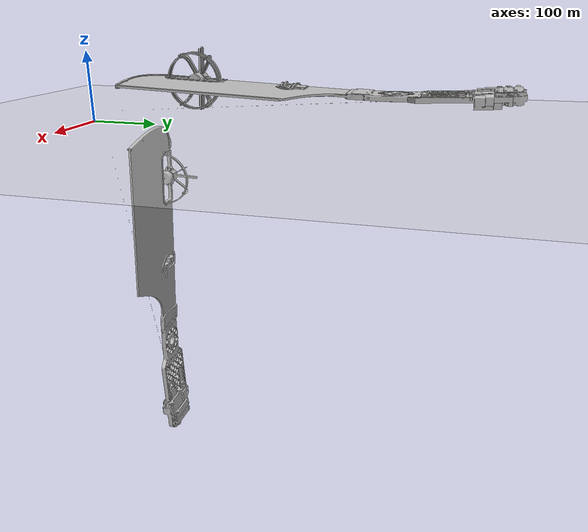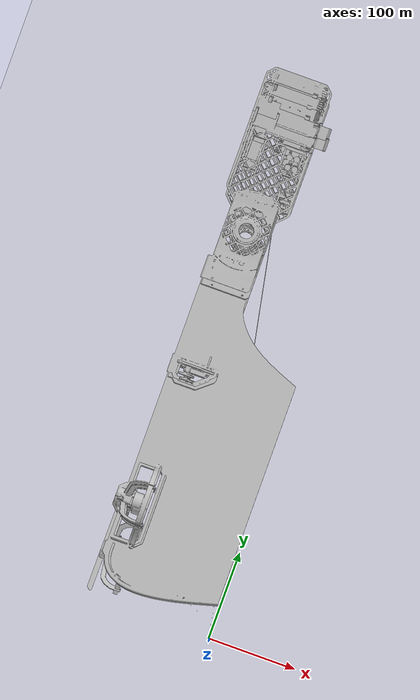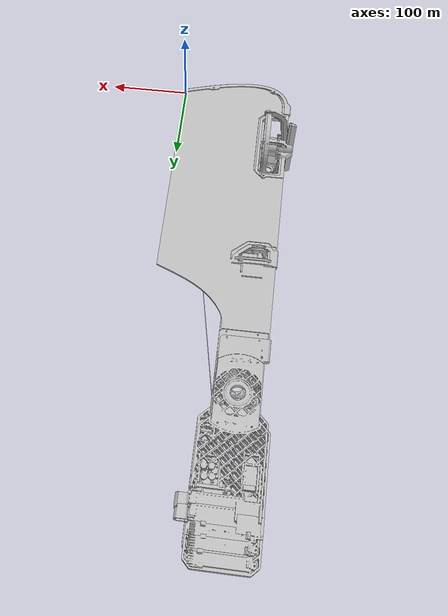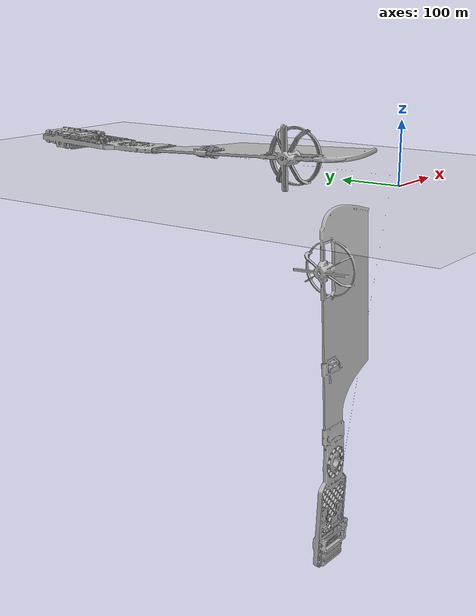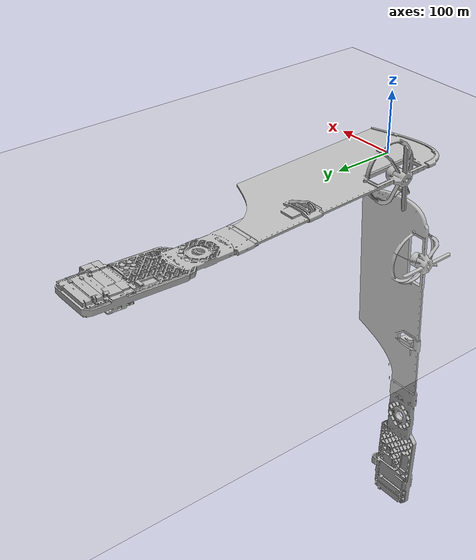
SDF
<?xml version="1.0" ?>
<sdf version="1.5">
  <world name="default">
    <!-- A global light source -->
    <include>
      <uri>model://sun</uri>
    </include>
    <!-- A ground plane -->
    <include>
      <uri>model://ground_plane</uri>
    </include>
    <include>
      <uri>model://delta_wing</uri>
    </include>
    <physics name='default_physics' default='0' type='ode'>
      <gravity>0 0 -9.8066</gravity>
      <ode>
        <solver>
          <type>quick</type>
          <iters>100</iters>
          <sor>1.0</sor>
          <use_dynamic_moi_rescaling>0</use_dynamic_moi_rescaling>
        </solver>
        <constraints>
          <cfm>0</cfm>
          <erp>0.2</erp>
          <contact_max_correcting_vel>100</contact_max_correcting_vel>
          <contact_surface_layer>0.001</contact_surface_layer>
        </constraints>
      </ode>
      <max_step_size>0.002</max_step_size>
      <real_time_factor>1</real_time_factor>
      <real_time_update_rate>500</real_time_update_rate>
      <magnetic_field>6.0e-6 2.3e-5 -4.2e-5</magnetic_field>
    </physics>
  </world>
</sdf>

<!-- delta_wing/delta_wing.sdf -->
<sdf version='1.6' xmlns:xacro='http://ros.org/wiki/xacro'>
  <xacro:arg name='visual_material' default='DarkGrey' />
  <xacro:arg name='mavlink_addr' default='INADDR_ANY' />
  <xacro:arg name='mavlink_udp_port' default='14560' />
  <model name="delta_wing">
    <pose>0 0 0 0 0 1.5707</pose>
    <include>
      <uri>model://zephyr_delta_wing</uri>
      <pose>0 0 0.2 0 0 0</pose>
    </include>

    <link name="skid_pad">
      <inertial>
        <mass>0.1</mass>
        <inertia>
          <ixx>0.0043137104</ixx>
          <ixy>0</ixy>
          <iyy>0.00387382402</iyy>
          <ixz>0</ixz>
          <iyz>0</iyz>
          <izz>0.00809845106</izz>
        </inertia>
      </inertial>
      <collision name="skid_pad">
        <pose>0 -0.07 0.025 0 0 0</pose>
        <geometry>
          <box>
            <size>1.0 0.5 .05</size>
          </box>
        </geometry>
        <surface>
          <contact>
            <ode>
              <kp>100000000</kp>
              <kd>1</kd>
              <min_depth>0.001</min_depth>
              <max_vel>1.0</max_vel>
            </ode>
          </contact>
          <friction>
            <ode>
              <mu>0.3</mu>
              <mu2>0</mu2>
              <fdir1>1 0 0</fdir1>
            </ode>
          </friction>
        </surface>
      </collision>
      <visual name="team_color">
        <pose>0 0 0.2 0 0 0</pose>
        <geometry>
          <mesh>
            <uri>model://zephyr_delta_wing/meshes/wing.dae</uri>
            <submesh>
              <name>Wing</name>
              <center>true</center>
            </submesh>
            <scale>1.02 1.02 1.02</scale>
          </mesh>
        </geometry>
        <material>
          <script>
            <name>Gazebo/$(arg visual_material)</name>
            <uri>file://media/materials/scripts/gazebo.material</uri>
          </script>
        </material>
      </visual>
      <sensor name="camera" type="camera">
        <pose>0 6 0.0 0 0.0 -1.5707</pose>
        <camera>
          <horizontal_fov>1.347</horizontal_fov>
          <image>
            <width>640</width>
            <height>480</height>
          </image>
          <clip>
            <near>0.1</near>
            <far>1000</far>
          </clip>
        </camera>
        <always_on>0</always_on>
        <update_rate>15</update_rate>
        <visualize>false</visualize>
      </sensor>
      <sensor name="camera_wide" type="camera">
        <pose>0 5 2.0 0 0.3 -1.5707</pose>
        <camera>
          <horizontal_fov>2.0</horizontal_fov>
          <image>
            <width>640</width>
            <height>480</height>
          </image>
          <clip>
            <near>0.1</near>
            <far>1000</far>
          </clip>
        </camera>
        <always_on>0</always_on>
        <update_rate>15</update_rate>
        <visualize>false</visualize>
      </sensor>
    </link>
    <joint name="skid_pad_joint" type="revolute">
      <parent>zephyr_delta_wing::wing</parent>
      <child>skid_pad</child>
      <axis>
        <limit>
          <lower>0</lower>
          <upper>0</upper>
        </limit>
        <xyz>1 0 0</xyz>
        <use_parent_model_frame>true</use_parent_model_frame>
      </axis>
    </joint>

    <link name='delta_wing/imu_link'>
      <pose>0 0 0.2 0 0 -1.5707</pose>
      <inertial>
        <pose>0 0 0 0 0 0</pose>
        <mass>0.15</mass>
        <inertia>
          <ixx>1e-04</ixx>
          <ixy>0</ixy>
          <ixz>0</ixz>
          <iyy>1e-04</iyy>
          <iyz>0</iyz>
          <izz>1e-04</izz>
        </inertia>
      </inertial>
    </link>
    <joint name='delta_wing/imu_joint' type='revolute'>
      <child>delta_wing/imu_link</child>
      <parent>zephyr_delta_wing::wing</parent>
      <axis>
        <xyz>0 0 1</xyz>
        <limit>
          <lower>0</lower>
          <upper>0</upper>
        </limit>
        <dynamics>
          <damping>0.1</damping>
        </dynamics>
        <use_parent_model_frame>1</use_parent_model_frame>
      </axis>
      <physics>
        <ode>
          <implicit_spring_damper>1</implicit_spring_damper>
        </ode>
      </physics>
    </joint>

    <include>
      <uri>model://gps</uri>
      <pose>0 0 0 0 0 0</pose>
      <name>gps</name>
    </include>
    <joint name='gps_joint' type='fixed'>
      <child>gps::link</child>
      <parent>base_link</parent>
    </joint>
    <plugin name='gazebo_imu_plugin' filename='libgazebo_imu_plugin.so'>
      <robotNamespace>delta_wing</robotNamespace>
      <linkName>delta_wing/imu_link</linkName>
      <imuTopic>/imu</imuTopic>
    </plugin>
    <plugin name='groundtruth_plugin' filename='libgazebo_groundtruth_plugin.so'>
      <robotNamespace/>
    </plugin>
    <plugin name='magnetometer_plugin' filename='libgazebo_magnetometer_plugin.so'>
      <robotNamespace/>
      <pubRate>100</pubRate>
      <noiseDensity>0.0004</noiseDensity>
      <randomWalk>6.4e-06</randomWalk>
      <biasCorrelationTime>600</biasCorrelationTime>
      <magTopic>/mag</magTopic>
    </plugin>
    <plugin name='barometer_plugin' filename='libgazebo_barometer_plugin.so'>
      <robotNamespace/>
      <pubRate>50</pubRate>
      <baroTopic>/baro</baroTopic>
    </plugin>
    <plugin name='mavlink_interface' filename='libgazebo_mavlink_interface.so'>
      <robotNamespace>delta_wing</robotNamespace>
      <imuSubTopic>/imu</imuSubTopic>
      <magSubTopic>/mag</magSubTopic>
      <baroSubTopic>/baro</baroSubTopic>
      <mavlink_addr>$(arg mavlink_addr)</mavlink_addr>
      <mavlink_udp_port>$(arg mavlink_udp_port)</mavlink_udp_port>
      <serialEnabled>false</serialEnabled>
      <serialDevice>/dev/ttyACM0</serialDevice>
      <baudRate>921600</baudRate>
      <qgc_addr>INADDR_ANY</qgc_addr>
      <qgc_udp_port>14550</qgc_udp_port>
      <hil_mode>false</hil_mode>
      <hil_state_level>false</hil_state_level>
      <motorSpeedCommandPubTopic>/gazebo/command/motor_speed</motorSpeedCommandPubTopic>
      <control_channels>
        <channel name="not_used_1">
          <input_index>0</input_index>
          <input_offset>0</input_offset>
          <input_scaling>0</input_scaling>
          <zero_position_disarmed>0</zero_position_disarmed>
          <zero_position_armed>0</zero_position_armed>
          <joint_control_type>velocity</joint_control_type>
        </channel>
        <channel name="not_used_2">
          <input_index>1</input_index>
          <input_offset>0</input_offset>
          <input_scaling>0</input_scaling>
          <zero_position_disarmed>0</zero_position_disarmed>
          <zero_position_armed>0</zero_position_armed>
          <joint_control_type>velocity</joint_control_type>
        </channel>
        <channel name="rudder">
          <input_index>2</input_index>
          <input_offset>0</input_offset>
          <input_scaling>0</input_scaling>
          <zero_position_disarmed>0</zero_position_disarmed>
          <zero_position_armed>0</zero_position_armed>
          <joint_control_type>position</joint_control_type>
        </channel>
        <channel name="flaps">
          <input_index>3</input_index>
          <input_offset>0</input_offset>
          <input_scaling>0</input_scaling>
          <zero_position_disarmed>0</zero_position_disarmed>
          <zero_position_armed>0</zero_position_armed>
          <joint_control_type>position</joint_control_type>
        </channel>
        <channel name="throttle">
          <input_index>4</input_index>
          <input_offset>1</input_offset>
          <input_scaling>324.6</input_scaling>
          <zero_position_disarmed>0</zero_position_disarmed>
          <zero_position_armed>0</zero_position_armed>
          <joint_control_type>velocity</joint_control_type>
          <joint_control_pid>
            <p>0.1</p>
            <i>0</i>
            <d>0</d>
            <iMax>0.0</iMax>
            <iMin>0.0</iMin>
            <cmdMax>2</cmdMax>
            <cmdMin>-2</cmdMin>
          </joint_control_pid>
          <joint_name>zephyr_delta_wing::propeller_joint</joint_name>
        </channel>
        <channel name="left_aileron">
          <input_index>5</input_index>
          <input_offset>0</input_offset>
          <!-- joint limits [-0.524, 0.524] -->
          <input_scaling>0.524</input_scaling>
          <zero_position_disarmed>0</zero_position_disarmed>
          <zero_position_armed>0</zero_position_armed>
          <joint_control_type>position</joint_control_type>
          <joint_name>zephyr_delta_wing::flap_left_joint</joint_name>
          <joint_control_pid>
            <p>10.0</p>
            <i>0</i>
            <d>0</d>
            <iMax>0</iMax>
            <iMin>0</iMin>
            <cmdMax>20</cmdMax>
            <cmdMin>-20</cmdMin>
          </joint_control_pid>
        </channel>
        <channel name="right_aileron">
          <input_index>6</input_index>
          <input_offset>0</input_offset>
          <!-- joint limits [-0.524, 0.524] -->
          <input_scaling>0.524</input_scaling>
          <zero_position_disarmed>0</zero_position_disarmed>
          <zero_position_armed>0</zero_position_armed>
          <joint_control_type>position</joint_control_type>
          <joint_name>zephyr_delta_wing::flap_right_joint</joint_name>
          <joint_control_pid>
            <p>10.0</p>
            <i>0</i>
            <d>0</d>
            <iMax>0</iMax>
            <iMin>0</iMin>
            <cmdMax>20</cmdMax>
            <cmdMin>-20</cmdMin>
          </joint_control_pid>
        </channel>
        <channel name="elevator">
          <input_index>7</input_index>
          <input_offset>0</input_offset>
          <input_scaling>0.524</input_scaling>
          <zero_position_disarmed>0</zero_position_disarmed>
          <zero_position_armed>0</zero_position_armed>
          <joint_control_type>position</joint_control_type>
        </channel>
      </control_channels>
    </plugin>
  </model>
</sdf>

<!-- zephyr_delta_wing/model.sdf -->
<sdf version="1.6">
  <model name="zephyr_delta_wing">
    <pose>0 0 0.02577 0 0 0</pose>

    <link name="wing">
      <inertial>
        <pose>0 -0.12 0 0 0 0</pose>
        <mass>1.5</mass>
        <inertia>
          <ixx>0.083137104</ixx>
          <ixy>0</ixy>
          <iyy>0.387382402</iyy>
          <ixz>0</ixz>
          <iyz>0</iyz>
          <izz>0.469845106</izz>
        </inertia>
      </inertial>
      <visual name="visual">
        <geometry>
          <mesh>
            <uri>model://../model_source/models/zephyr_delta_wing/meshes/wing.dae</uri>
            <submesh>
              <name>Wing</name>
              <center>true</center>
            </submesh>
          </mesh>
        </geometry>
      </visual>
      <collision name="body_collision">
        <geometry>
          <mesh>
            <uri>model://../model_source/models/zephyr_delta_wing/meshes/wing.dae</uri>
            <submesh>
              <name>Wing</name>
              <center>true</center>
            </submesh>
          </mesh>
        </geometry>
      </collision>
      <collision name="right_rudder_collision">
        <pose>-0.76435 0.33918 0.002 -0.03 0 0</pose>
        <geometry>
          <box>
            <size>.005 0.12993 .12688</size>
          </box>
        </geometry>
      </collision>
      <collision name="left_rudder_collision">
        <pose>0.76435 0.33918 0.002 -0.03 0 0</pose>
        <geometry>
          <box>
            <size>.005 0.12993 .12688</size>
          </box>
        </geometry>
      </collision>
      <sensor name="gps_sensor" type="gps">
        <pose>0 0 0  0 0 0</pose>
        <update_rate>10.0</update_rate>
        <always_on>true</always_on>
        <gps>
          <position_sensing>
            <horizontal>
              <noise type="gaussian_quantized">
                <mean>0</mean>
                <stddev>1</stddev>
                <bias_mean>3</bias_mean>
                <bias_stddev>1</bias_stddev>
                <precision>0.5</precision>
              </noise>
            </horizontal>
            <vertical>
              <noise type="gaussian_quantized">
                <mean>0</mean>
                <stddev>1</stddev>
                <bias_mean>3</bias_mean>
                <bias_stddev>1</bias_stddev>
                <precision>1.0</precision>
              </noise>
            </vertical>
          </position_sensing>
          <velocity_sensing>
            <horizontal>
              <noise type="gaussian_quantized">
                <mean>0</mean>
                <stddev>0.1</stddev>
                <bias_mean>0.1</bias_mean>
                <bias_stddev>0.1</bias_stddev>
                <precision>0.1</precision>
              </noise>
            </horizontal>
            <vertical>
              <noise type="gaussian_quantized">
                <mean>0</mean>
                <stddev>0.2</stddev>
                <bias_mean>0.2</bias_mean>
                <bias_stddev>0.2</bias_stddev>
                <precision>0.2</precision>
              </noise>
            </vertical>
          </velocity_sensing>
        </gps>
      </sensor>
    </link>

    <link name="propeller">
      <pose>0 0.07 0.008 0 1.5707 0</pose>
      <inertial>
        <mass>.05</mass>
        <inertia>
          <ixx>0.000367571</ixx>
          <ixy>0</ixy>
          <iyy>0.00036985</iyy>
          <ixz>0</ixz>
          <iyz>0</iyz>
          <izz>0.000003187</izz>
        </inertia>
      </inertial>
      <visual name="visual">
        <geometry>
          <mesh>
            <uri>model://../model_source/models/zephyr_delta_wing/meshes/wing.dae</uri>
            <submesh>
              <name>Propeller</name>
              <center>true</center>
            </submesh>
          </mesh>
        </geometry>
      </visual>
      <collision name="blade1">
        <pose>0 0 0.074205 0 0  0.3</pose>
        <geometry>
          <box>
            <size>0.02561 0.00541 0.14841</size>
          </box>
        </geometry>
      </collision>
      <collision name="blade2">
        <pose>0 0 -0.074205 0 0  -0.3</pose>
        <geometry>
          <box>
            <size>0.02561 0.00541 0.14841</size>
          </box>
        </geometry>
      </collision>
    </link>

    <link name="flap_left">
      <pose>0.4530 .239 0.007 0 0 0</pose>
      <inertial>
        <pose>0 0 0 0 0 0.32445671</pose>
        <mass>.1</mass>
        <inertia>
          <ixx>0.000102319</ixx>
          <ixy>0</ixy>
          <iyy>0.00334417</iyy>
          <ixz>0</ixz>
          <iyz>0</iyz>
          <izz>0.003446072</izz>
        </inertia>
      </inertial>
      <visual name="visual">
        <geometry>
          <mesh>
            <uri>model://../model_source/models/zephyr_delta_wing/meshes/wing.dae</uri>
            <submesh>
              <name>Flap_Left</name>
              <center>true</center>
            </submesh>
          </mesh>
        </geometry>
      </visual>
      <collision name="collision">
        <pose>-0.01 0.01 0 0 0 0.32445671</pose>
        <geometry>
          <box>
            <size>0.633463031 0.110694312 0.005</size>
          </box>
        </geometry>
      </collision>
    </link>

    <link name="flap_right">
      <pose>-0.4530 .239 0.007 0 0 0</pose>
      <inertial>
        <pose>0 0 0 0 0 -0.32445671</pose>
        <mass>.1</mass>
        <inertia>
          <ixx>0.000102319</ixx>
          <ixy>0</ixy>
          <iyy>0.00334417</iyy>
          <ixz>0</ixz>
          <iyz>0</iyz>
          <izz>0.003446072</izz>
        </inertia>
      </inertial>
      <visual name="visual">
        <geometry>
          <mesh>
            <uri>model://../model_source/models/zephyr_delta_wing/meshes/wing.dae</uri>
            <submesh>
              <name>Flap_Right</name>
              <center>true</center>
            </submesh>
          </mesh>
        </geometry>
      </visual>
      <collision name="collision">
        <pose>0.01 0.01 0 0 0 -0.32445671</pose>
        <geometry>
          <box>
            <size>0.633463031 0.110694312 0.005</size>
          </box>
        </geometry>
      </collision>
    </link>

    <joint name="propeller_joint" type="revolute">
      <parent>wing</parent>
      <child>propeller</child>
      <axis>
        <xyz>0 -1 0</xyz>
        <dynamics>
          <damping>0.002</damping>
        </dynamics>
      </axis>
      <physics>
        <ode>
          <implicit_spring_damper>1</implicit_spring_damper>
        </ode>
      </physics>
    </joint>

    <joint name="flap_left_joint" type="revolute">
      <parent>wing</parent>
      <child>flap_left</child>
      <pose>0 -0.04 0 0 0 0</pose>
      <axis>
        <xyz>1 0.330321014 0</xyz>
        <limit>
          <lower>-0.524</lower>
          <upper>0.524</upper>
        </limit>
        <dynamics>
          <damping>0.1</damping>
        </dynamics>
      </axis>
      <physics>
        <ode>
          <implicit_spring_damper>1</implicit_spring_damper>
        </ode>
      </physics>
    </joint>

    <joint name="flap_right_joint" type="revolute">
      <parent>wing</parent>
      <child>flap_right</child>
      <pose>0 -0.04 0 0 0 0</pose>
      <axis>
        <xyz>1 -0.330321014 0</xyz>
        <limit>
          <lower>-0.524</lower>
          <upper>0.524</upper>
        </limit>
        <dynamics>
          <damping>0.1</damping>
        </dynamics>
      </axis>
      <physics>
        <ode>
          <implicit_spring_damper>1</implicit_spring_damper>
        </ode>
      </physics>
    </joint>

    <plugin name="invisible_canard" filename="libLiftDragPlugin.so">
      <a0>0.13</a0>
      <cla>3.7</cla>
      <cda>0.06417112299</cda>
      <cma>-1.8</cma>
      <alpha_stall>0.3391428111</alpha_stall>
      <cla_stall>-3.85</cla_stall>
      <cda_stall>-0.9233984055</cda_stall>
      <cma_stall>0</cma_stall>
      <cp>0 -0.1 0</cp>
      <area>0.50</area>
      <air_density>1.2041</air_density>
      <forward>0 -1 0</forward>
      <upward>0 0 1</upward>
      <link_name>wing</link_name>
    </plugin>
    <plugin name="left_wing" filename="libLiftDragPlugin.so">
      <a0>0.15</a0>
      <cla>6.8</cla>
      <cda>0.06417112299</cda>
      <cma>-1.8</cma>
      <alpha_stall>0.6391428111</alpha_stall>
      <cla_stall>-3.85</cla_stall>
      <cda_stall>-0.9233984055</cda_stall>
      <cma_stall>0</cma_stall>
      <cp>0.7 0.20 0</cp>
      <area>0.10</area>
      <air_density>1.2041</air_density>
      <forward>0 -1 0</forward>
      <upward>0 0 1</upward>
      <link_name>wing</link_name>
      <control_joint_name>
        flap_left_joint
      </control_joint_name>
      <control_joint_rad_to_cl>-5.0</control_joint_rad_to_cl>
    </plugin>
    <plugin name="right_wing" filename="libLiftDragPlugin.so">
      <a0>0.15</a0>
      <cla>6.8</cla>
      <cda>0.06417112299</cda>
      <cma>-1.8</cma>
      <alpha_stall>0.6391428111</alpha_stall>
      <cla_stall>-3.85</cla_stall>
      <cda_stall>-0.9233984055</cda_stall>
      <cma_stall>0</cma_stall>
      <cp>-0.7 0.20 0</cp>
      <area>0.10</area>
      <air_density>1.2041</air_density>
      <forward>0 -1 0</forward>
      <upward>0 0 1</upward>
      <link_name>wing</link_name>
      <control_joint_name>
        flap_right_joint
      </control_joint_name>
      <control_joint_rad_to_cl>-5.0</control_joint_rad_to_cl>
    </plugin>
    <plugin name="left_rudder" filename="libLiftDragPlugin.so">
      <a0>0.0</a0>
      <cla>4.752798721</cla>
      <cda>0.6417112299</cda>
      <cma>-1.8</cma>
      <alpha_stall>0.3391428111</alpha_stall>
      <cla_stall>-3.85</cla_stall>
      <cda_stall>-0.9233984055</cda_stall>
      <cma_stall>0</cma_stall>
      <cp>-0.76 0.30 0.025</cp>
      <area>0.12</area>
      <air_density>1.2041</air_density>
      <forward>0 -1 0</forward>
      <upward>1 0 0</upward>
      <link_name>wing</link_name>
    </plugin>
    <plugin name="right_rudder" filename="libLiftDragPlugin.so">
      <a0>0.0</a0>
      <cla>4.752798721</cla>
      <cda>0.6417112299</cda>
      <cma>-1.8</cma>
      <alpha_stall>0.3391428111</alpha_stall>
      <cla_stall>-3.85</cla_stall>
      <cda_stall>-0.9233984055</cda_stall>
      <cma_stall>0</cma_stall>
      <cp>0.76 0.30 0.025</cp>
      <area>0.12</area>
      <air_density>1.2041</air_density>
      <forward>0 -1 0</forward>
      <upward>1 0 0</upward>
      <link_name>wing</link_name>
    </plugin>
    <plugin name="propeller_blade_1" filename="libLiftDragPlugin.so">
      <a0>0.30</a0>
      <alpha_stall>1.4</alpha_stall>
      <cla>4.2500</cla>
      <cda>0.10</cda>
      <cma>0.00</cma>
      <cla_stall>-0.025</cla_stall>
      <cda_stall>0.0</cda_stall>
      <cma_stall>0.0</cma_stall>
      <area>0.02</area>
      <air_density>1.2041</air_density>
      <cp>0 0 0.074205</cp>
      <forward>-1 0 0</forward>
      <upward>0 -1 0</upward>
      <link_name>propeller</link_name>
    </plugin>
    <plugin name="propeller_blade_2" filename="libLiftDragPlugin.so">
      <a0>0.30</a0>
      <alpha_stall>1.4</alpha_stall>
      <cla>4.2500</cla>
      <cda>0.10</cda>
      <cma>0.00</cma>
      <cla_stall>-0.025</cla_stall>
      <cda_stall>0.0</cda_stall>
      <cma_stall>0.0</cma_stall>
      <area>0.02</area>
      <air_density>1.2041</air_density>
      <cp>0 0 -0.074205</cp>
      <forward>1 0 0</forward>
      <upward>0 -1 0</upward>
      <link_name>propeller</link_name>
    </plugin>

  </model>
</sdf>

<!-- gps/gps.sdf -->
<sdf version="1.6">
  <model name="gps">
    <link name="link">
      <pose>0 0 0 0 0 0</pose>
      <inertial>
        <pose>0 0 0 0 0 0</pose>
        <mass>0.015</mass>
        <inertia>
          <ixx>1e-05</ixx>
          <ixy>0</ixy>
          <ixz>0</ixz>
          <iyy>1e-05</iyy>
          <iyz>0</iyz>
          <izz>1e-05</izz>
        </inertia>
      </inertial>
      <visual name="visual">
        <geometry>
          <cylinder>
            <radius>0.01</radius>
            <length>0.002</length>
          </cylinder>
        </geometry>
        <material>
          <script>
            <name>Gazebo/Black</name>
          </script>
        </material>
      </visual>
      <sensor name="gps" type="gps">
        <pose>0 0 0 0 0 0</pose>
        <update_rate>5.0</update_rate>
        <always_on>true</always_on>
        <visualize>false</visualize>
        <!-- GpsSensor noise currently not used -->
        <plugin name="gps_plugin" filename="libgazebo_geocoordinate_gps_plugin.so">
          <robotNamespace></robotNamespace>
          <gpsNoise>true</gpsNoise>
          <gpsXYRandomWalk>2.0</gpsXYRandomWalk>
          <gpsZRandomWalk>4.0</gpsZRandomWalk>
          <gpsXYNoiseDensity>2.0e-4</gpsXYNoiseDensity>
          <gpsZNoiseDensity>4.0e-4</gpsZNoiseDensity>
          <gpsVXYNoiseDensity>0.2</gpsVXYNoiseDensity>
          <gpsVZNoiseDensity>0.4</gpsVZNoiseDensity>
        </plugin>
      </sensor>
    </link>
  </model>
</sdf>
